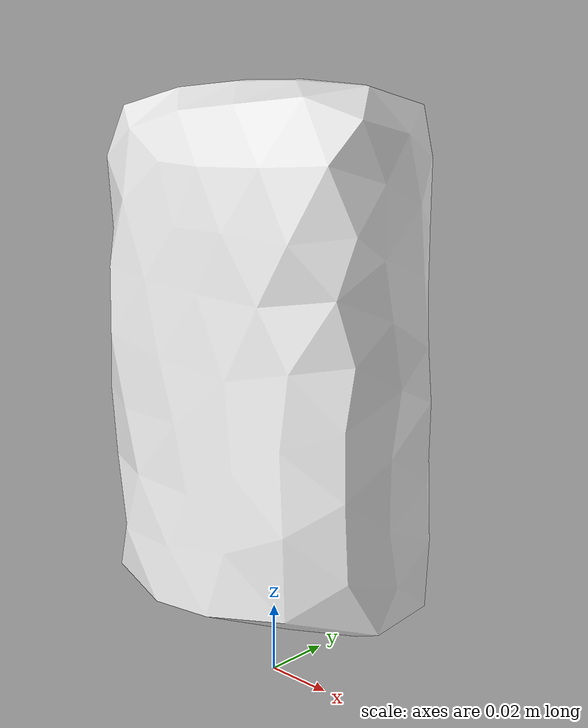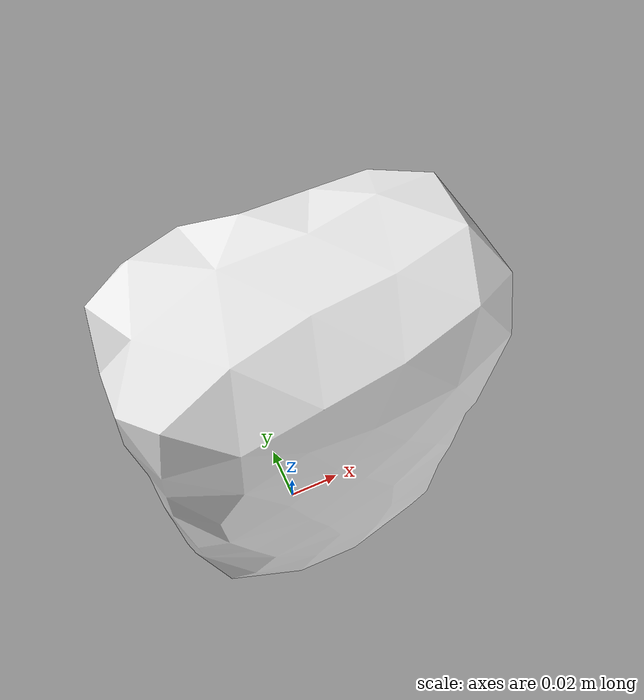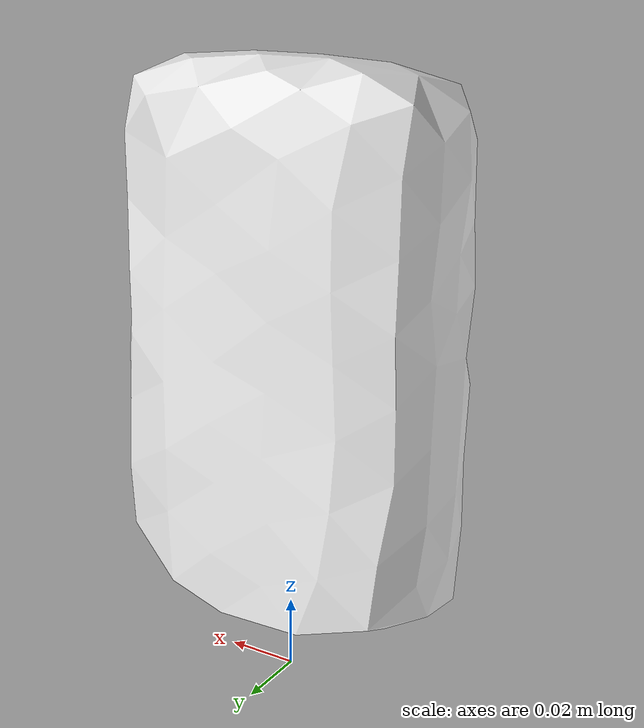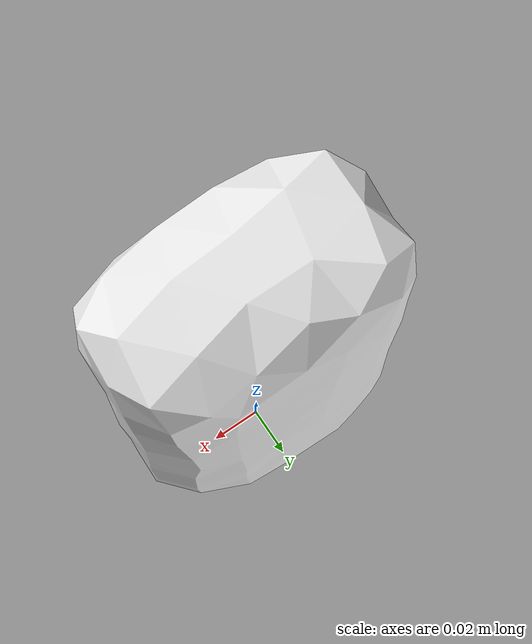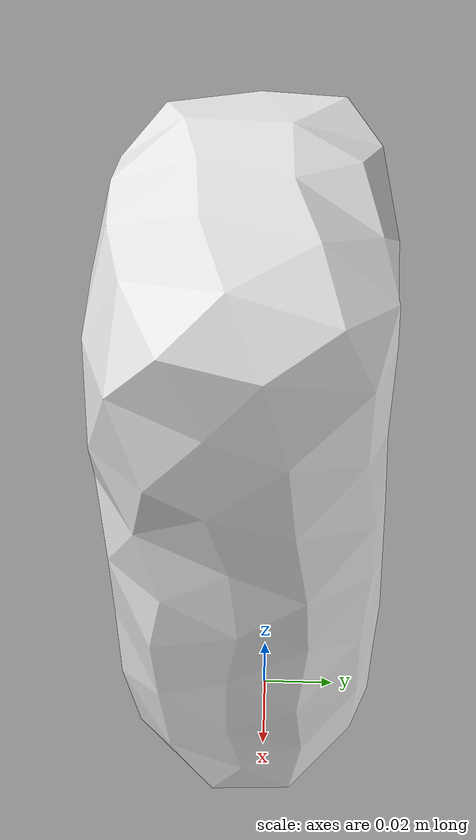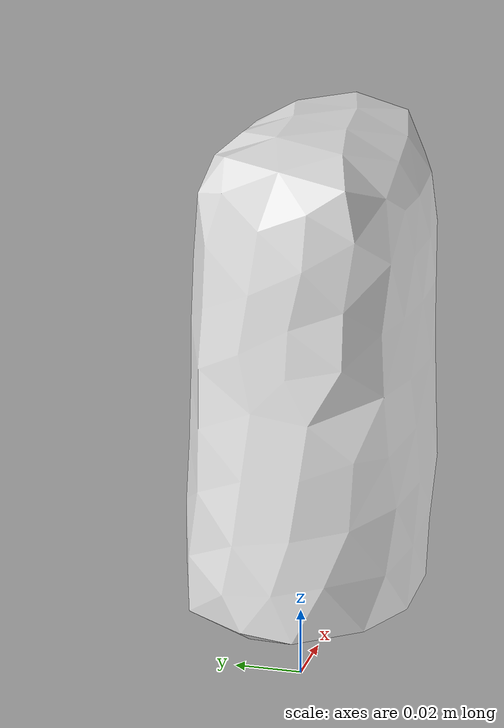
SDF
<?xml version="1.0" ?><sdf version="1.5"><model name="sugar-box">
<link name="link">
<pose>0 0 0 0 0 0</pose>
<inertial>
<pose>0.0015485 -0.0038865 0.095977 0 0 0</pose>
<mass>0.05</mass>
<inertia>
<ixx>0.000106909</ixx>
<ixy>0</ixy><iyy>0.000128686</iyy>
<ixz>0</ixz><iyz>0</iyz><izz>5.4907e-05</izz>
</inertia>
</inertial>
<visual name="visual">
<pose>0 0 0 0 0 0</pose>
<geometry><mesh><uri>model://sugar-box/meshes/sugar-box.dae</uri></mesh></geometry>
<material><script><uri>file://media/materials/scripts/gazebo.material</uri><name>Gazebo/WhiteGlow</name></script></material></visual>
<collision name="collision"><pose>0 0 0 0 0 0</pose><geometry><mesh><uri>model://sugar-box/meshes/sugar-box.dae</uri></mesh></geometry>
<surface><friction><ode><mu>1.000000</mu><mu2>1.000000</mu2></ode></friction></surface>
</collision></link></model></sdf>
